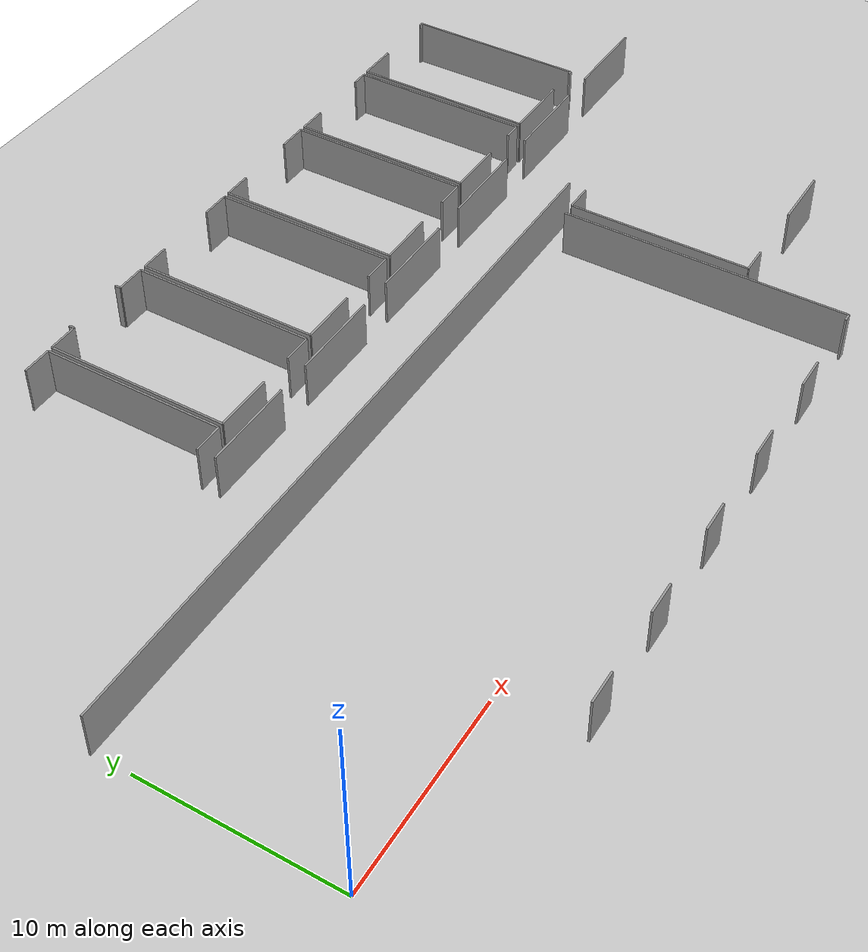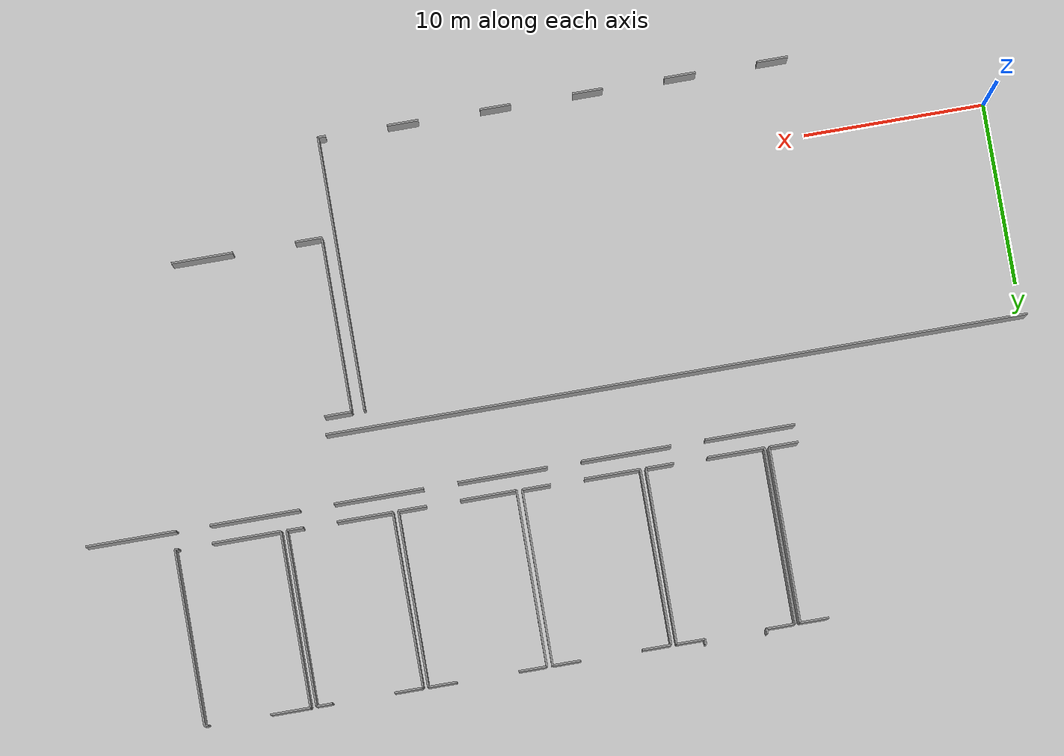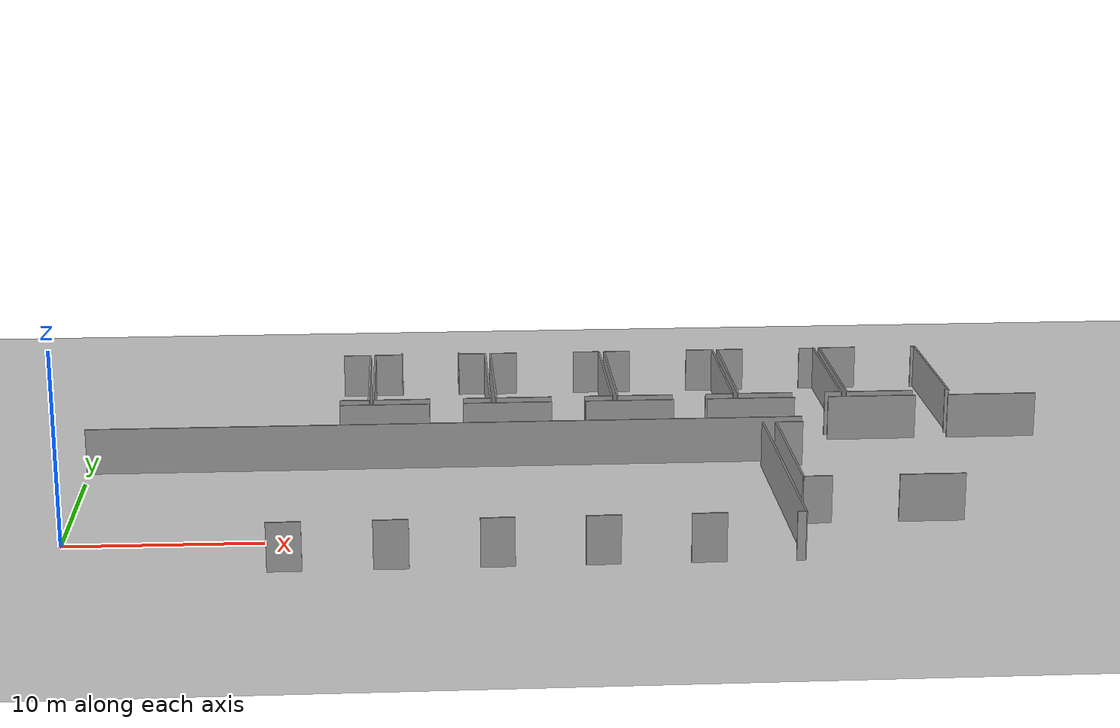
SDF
<sdf version="1.6">
 <world name="default">
  <model name="ground_plane">
   <static>1</static>
   <link name="link">
    <collision name="collision">
     <geometry><plane><normal>0 0 1</normal><size>100 100</size></plane></geometry>
     <surface><friction><ode><mu>100</mu><mu2>50</mu2></ode></friction></surface>
    </collision>
    <visual name="visual">
     <cast_shadows>0</cast_shadows>
     <geometry><plane><normal>0 0 1</normal><size>100 100</size></plane></geometry>
     <material>
      <script><uri>file://media/materials/scripts/gazebo.material</uri><name>Gazebo/Grey</name></script>
     </material>
    </visual>
   </link>
  </model>
  <model name="0510032192_A_40_1_103">
   <static>1</static>
   <link name="Wall_189">
    <collision name="Wall_189_Collision">
     <geometry><box><size>4.97541702133 0.1 2.5</size></box></geometry>
     <pose>2.48770851067 0 1.25 0 0 0</pose>
    </collision>
    <visual name="Wall_189_Visual">
     <pose>2.48770851067 0 1.25 0 0 0</pose>
     <geometry><box><size>4.97541702133 0.1 2.5</size></box></geometry>
     <material>
      <script><uri>file://media/materials/scripts/gazebo.material</uri><name>Gazebo/Grey</name></script>
      <ambient>1 1 1 1</ambient>
     </material>
    </visual>
    <pose>80.8799054794 -10.9934826522 0 0 0 0.0</pose>
   </link>
   <link name="Wall_190">
    <collision name="Wall_190_Collision">
     <geometry><box><size>4.95750384308 0.1 2.5</size></box></geometry>
     <pose>2.47875192154 0 1.25 0 0 0</pose>
    </collision>
    <visual name="Wall_190_Visual">
     <pose>2.47875192154 0 1.25 0 0 0</pose>
     <geometry><box><size>4.95750384308 0.1 2.5</size></box></geometry>
     <material>
      <script><uri>file://media/materials/scripts/gazebo.material</uri><name>Gazebo/Grey</name></script>
      <ambient>1 1 1 1</ambient>
     </material>
    </visual>
    <pose>87.7298540267 -10.9934826522 0 0 0 0.0</pose>
   </link>
   <link name="Wall_191">
    <collision name="Wall_191_Collision">
     <geometry><box><size>4.94797555677 0.1 2.5</size></box></geometry>
     <pose>2.47398777838 0 1.25 0 0 0</pose>
    </collision>
    <visual name="Wall_191_Visual">
     <pose>2.47398777838 0 1.25 0 0 0</pose>
     <geometry><box><size>4.94797555677 0.1 2.5</size></box></geometry>
     <material>
      <script><uri>file://media/materials/scripts/gazebo.material</uri><name>Gazebo/Grey</name></script>
      <ambient>1 1 1 1</ambient>
     </material>
    </visual>
    <pose>94.5466441376 -10.9934826522 0 0 0 0.0</pose>
   </link>
   <link name="Wall_192">
    <collision name="Wall_192_Collision">
     <geometry><box><size>4.92866489652 0.1 2.5</size></box></geometry>
     <pose>2.46433244826 0 1.25 0 0 0</pose>
    </collision>
    <visual name="Wall_192_Visual">
     <pose>2.46433244826 0 1.25 0 0 0</pose>
     <geometry><box><size>4.92866489652 0.1 2.5</size></box></geometry>
     <material>
      <script><uri>file://media/materials/scripts/gazebo.material</uri><name>Gazebo/Grey</name></script>
      <ambient>1 1 1 1</ambient>
     </material>
    </visual>
    <pose>101.373851842 -10.9934826522 0 0 0 0.0</pose>
   </link>
   <link name="Wall_193">
    <collision name="Wall_193_Collision">
     <geometry><box><size>4.95699566781 0.1 2.5</size></box></geometry>
     <pose>2.4784978339 0 1.25 0 0 0</pose>
    </collision>
    <visual name="Wall_193_Visual">
     <pose>2.4784978339 0 1.25 0 0 0</pose>
     <geometry><box><size>4.95699566781 0.1 2.5</size></box></geometry>
     <material>
      <script><uri>file://media/materials/scripts/gazebo.material</uri><name>Gazebo/Grey</name></script>
      <ambient>1 1 1 1</ambient>
     </material>
    </visual>
    <pose>108.195596661 -10.9934826522 0 0 0 0.0</pose>
   </link>
   <link name="Wall_194">
    <collision name="Wall_194_Collision">
     <geometry><box><size>4.98011764257 0.1 2.5</size></box></geometry>
     <pose>2.49005882129 0 1.25 0 0 0</pose>
    </collision>
    <visual name="Wall_194_Visual">
     <pose>2.49005882129 0 1.25 0 0 0</pose>
     <geometry><box><size>4.98011764257 0.1 2.5</size></box></geometry>
     <material>
      <script><uri>file://media/materials/scripts/gazebo.material</uri><name>Gazebo/Grey</name></script>
      <ambient>1 1 1 1</ambient>
     </material>
    </visual>
    <pose>114.993457243 -10.9934826522 0 0 0 0.0</pose>
   </link>
   <link name="Wall_202">
    <collision name="Wall_202_Collision">
     <geometry><box><size>38.7556058084 0.1 2.5</size></box></geometry>
     <pose>19.3778029042 0 1.25 0 0 0</pose>
    </collision>
    <visual name="Wall_202_Visual">
     <pose>19.3778029042 0 1.25 0 0 0</pose>
     <geometry><box><size>38.7556058084 0.1 2.5</size></box></geometry>
     <material>
      <script><uri>file://media/materials/scripts/gazebo.material</uri><name>Gazebo/Grey</name></script>
      <ambient>1 1 1 1</ambient>
     </material>
    </visual>
    <pose>106.125798788 -14.7831997256 0 0 0 3.14159265359</pose>
   </link>
   <link name="Wall_234">
    <collision name="Wall_234_Collision">
     <geometry><box><size>1.60189549376 0.1 2.5</size></box></geometry>
     <pose>0.800947746878 0 1.25 0 0 0</pose>
    </collision>
    <visual name="Wall_234_Visual">
     <pose>0.800947746878 0 1.25 0 0 0</pose>
     <geometry><box><size>1.60189549376 0.1 2.5</size></box></geometry>
     <material>
      <script><uri>file://media/materials/scripts/gazebo.material</uri><name>Gazebo/Grey</name></script>
      <ambient>1 1 1 1</ambient>
     </material>
    </visual>
    <pose>80.8810488738 -10.020199967 0 0 0 0.0</pose>
   </link>
   <link name="Wall_235">
    <collision name="Wall_235_Collision">
     <geometry><box><size>9.68874264734 0.1 2.5</size></box></geometry>
     <pose>4.84437132367 0 1.25 0 0 0</pose>
    </collision>
    <visual name="Wall_235_Visual">
     <pose>4.84437132367 0 1.25 0 0 0</pose>
     <geometry><box><size>9.68874264734 0.1 2.5</size></box></geometry>
     <material>
      <script><uri>file://media/materials/scripts/gazebo.material</uri><name>Gazebo/Grey</name></script>
      <ambient>1 1 1 1</ambient>
     </material>
    </visual>
    <pose>82.4829443675 -10.020199967 0 0 0 1.57079632679</pose>
   </link>
   <link name="Wall_236">
    <collision name="Wall_236_Collision">
     <geometry><box><size>1.58220370206 0.1 2.5</size></box></geometry>
     <pose>0.791101851028 0 1.25 0 0 0</pose>
    </collision>
    <visual name="Wall_236_Visual">
     <pose>0.791101851028 0 1.25 0 0 0</pose>
     <geometry><box><size>1.58220370206 0.1 2.5</size></box></geometry>
     <material>
      <script><uri>file://media/materials/scripts/gazebo.material</uri><name>Gazebo/Grey</name></script>
      <ambient>1 1 1 1</ambient>
     </material>
    </visual>
    <pose>82.4829443675 -0.33145731963 0 0 0 3.14159265359</pose>
   </link>
   <link name="Wall_239">
    <collision name="Wall_239_Collision">
     <geometry><box><size>9.70436903688 0.1 2.5</size></box></geometry>
     <pose>4.85218451844 0 1.25 0 0 0</pose>
    </collision>
    <visual name="Wall_239_Visual">
     <pose>4.85218451844 0 1.25 0 0 0</pose>
     <geometry><box><size>9.70436903688 0.1 2.5</size></box></geometry>
     <material>
      <script><uri>file://media/materials/scripts/gazebo.material</uri><name>Gazebo/Grey</name></script>
      <ambient>1 1 1 1</ambient>
     </material>
    </visual>
    <pose>82.7480848145 -10.0213433613 0 0 0 1.57079632679</pose>
   </link>
   <link name="Wall_240">
    <collision name="Wall_240_Collision">
     <geometry><box><size>1.58512570986 0.1 2.5</size></box></geometry>
     <pose>0.792562854929 0 1.25 0 0 0</pose>
    </collision>
    <visual name="Wall_240_Visual">
     <pose>0.792562854929 0 1.25 0 0 0</pose>
     <geometry><box><size>1.58512570986 0.1 2.5</size></box></geometry>
     <material>
      <script><uri>file://media/materials/scripts/gazebo.material</uri><name>Gazebo/Grey</name></script>
      <ambient>1 1 1 1</ambient>
     </material>
    </visual>
    <pose>82.7480848145 -0.316974324445 0 0 0 0.0</pose>
   </link>
   <link name="Wall_241">
    <collision name="Wall_241_Collision">
     <geometry><box><size>0.294995744032 0.1 2.5</size></box></geometry>
     <pose>0.147497872016 0 1.25 0 0 0</pose>
    </collision>
    <visual name="Wall_241_Visual">
     <pose>0.147497872016 0 1.25 0 0 0</pose>
     <geometry><box><size>0.294995744032 0.1 2.5</size></box></geometry>
     <material>
      <script><uri>file://media/materials/scripts/gazebo.material</uri><name>Gazebo/Grey</name></script>
      <ambient>1 1 1 1</ambient>
     </material>
    </visual>
    <pose>84.3332105243 -0.316974324445 0 0 0 1.57079632679</pose>
   </link>
   <link name="Wall_242">
    <collision name="Wall_242_Collision">
     <geometry><box><size>0.303761767434 0.1 2.5</size></box></geometry>
     <pose>0.151880883717 0 1.25 0 0 0</pose>
    </collision>
    <visual name="Wall_242_Visual">
     <pose>0.151880883717 0 1.25 0 0 0</pose>
     <geometry><box><size>0.303761767434 0.1 2.5</size></box></geometry>
     <material>
      <script><uri>file://media/materials/scripts/gazebo.material</uri><name>Gazebo/Grey</name></script>
      <ambient>1 1 1 1</ambient>
     </material>
    </visual>
    <pose>87.7232477481 -0.0219785804124 0 0 0 -1.57079632679</pose>
   </link>
   <link name="Wall_243">
    <collision name="Wall_243_Collision">
     <geometry><box><size>1.55984399019 0.1 2.5</size></box></geometry>
     <pose>0.779921995096 0 1.25 0 0 0</pose>
    </collision>
    <visual name="Wall_243_Visual">
     <pose>0.779921995096 0 1.25 0 0 0</pose>
     <geometry><box><size>1.55984399019 0.1 2.5</size></box></geometry>
     <material>
      <script><uri>file://media/materials/scripts/gazebo.material</uri><name>Gazebo/Grey</name></script>
      <ambient>1 1 1 1</ambient>
     </material>
    </visual>
    <pose>87.7232477481 -0.325740347846 0 0 0 0.0</pose>
   </link>
   <link name="Wall_244">
    <collision name="Wall_244_Collision">
     <geometry><box><size>9.69966841564 0.1 2.5</size></box></geometry>
     <pose>4.84983420782 0 1.25 0 0 0</pose>
    </collision>
    <visual name="Wall_244_Visual">
     <pose>4.84983420782 0 1.25 0 0 0</pose>
     <geometry><box><size>9.69966841564 0.1 2.5</size></box></geometry>
     <material>
      <script><uri>file://media/materials/scripts/gazebo.material</uri><name>Gazebo/Grey</name></script>
      <ambient>1 1 1 1</ambient>
     </material>
    </visual>
    <pose>89.2830917383 -0.325740347846 0 0 0 -1.57079632679</pose>
   </link>
   <link name="Wall_245">
    <collision name="Wall_245_Collision">
     <geometry><box><size>1.54345533775 0.1 2.5</size></box></geometry>
     <pose>0.771727668873 0 1.25 0 0 0</pose>
    </collision>
    <visual name="Wall_245_Visual">
     <pose>0.771727668873 0 1.25 0 0 0</pose>
     <geometry><box><size>1.54345533775 0.1 2.5</size></box></geometry>
     <material>
      <script><uri>file://media/materials/scripts/gazebo.material</uri><name>Gazebo/Grey</name></script>
      <ambient>1 1 1 1</ambient>
     </material>
    </visual>
    <pose>89.2830917383 -10.0254087635 0 0 0 3.14159265359</pose>
   </link>
   <link name="Wall_246">
    <collision name="Wall_246_Collision">
     <geometry><box><size>3.14039875406 0.1 2.5</size></box></geometry>
     <pose>1.57019937703 0 1.25 0 0 0</pose>
    </collision>
    <visual name="Wall_246_Visual">
     <pose>1.57019937703 0 1.25 0 0 0</pose>
     <geometry><box><size>3.14039875406 0.1 2.5</size></box></geometry>
     <material>
      <script><uri>file://media/materials/scripts/gazebo.material</uri><name>Gazebo/Grey</name></script>
      <ambient>1 1 1 1</ambient>
     </material>
    </visual>
    <pose>85.8884809371 -10.0254087635 0 0 0 3.14029810356</pose>
   </link>
   <link name="Wall_247">
    <collision name="Wall_247_Collision">
     <geometry><box><size>3.06963271632 0.1 2.5</size></box></geometry>
     <pose>1.53481635816 0 1.25 0 0 0</pose>
    </collision>
    <visual name="Wall_247_Visual">
     <pose>1.53481635816 0 1.25 0 0 0</pose>
     <geometry><box><size>3.06963271632 0.1 2.5</size></box></geometry>
     <material>
      <script><uri>file://media/materials/scripts/gazebo.material</uri><name>Gazebo/Grey</name></script>
      <ambient>1 1 1 1</ambient>
     </material>
    </visual>
    <pose>103.241268914 -10.0068603661 0 0 0 0.0</pose>
   </link>
   <link name="Wall_248">
    <collision name="Wall_248_Collision">
     <geometry><box><size>0.928436217651 0.1 2.5</size></box></geometry>
     <pose>0.464218108826 0 1.25 0 0 0</pose>
    </collision>
    <visual name="Wall_248_Visual">
     <pose>0.464218108826 0 1.25 0 0 0</pose>
     <geometry><box><size>0.928436217651 0.1 2.5</size></box></geometry>
     <material>
      <script><uri>file://media/materials/scripts/gazebo.material</uri><name>Gazebo/Grey</name></script>
      <ambient>1 1 1 1</ambient>
     </material>
    </visual>
    <pose>108.155704903 -10.0068603661 0 0 0 0.0</pose>
   </link>
   <link name="Wall_249">
    <collision name="Wall_249_Collision">
     <geometry><box><size>9.67540304651 0.1 2.5</size></box></geometry>
     <pose>4.83770152326 0 1.25 0 0 0</pose>
    </collision>
    <visual name="Wall_249_Visual">
     <pose>4.83770152326 0 1.25 0 0 0</pose>
     <geometry><box><size>9.67540304651 0.1 2.5</size></box></geometry>
     <material>
      <script><uri>file://media/materials/scripts/gazebo.material</uri><name>Gazebo/Grey</name></script>
      <ambient>1 1 1 1</ambient>
     </material>
    </visual>
    <pose>109.08414112 -10.0068603661 0 0 0 1.57079632679</pose>
   </link>
   <link name="Wall_250">
    <collision name="Wall_250_Collision">
     <geometry><box><size>0.890577160063 0.1 2.5</size></box></geometry>
     <pose>0.445288580031 0 1.25 0 0 0</pose>
    </collision>
    <visual name="Wall_250_Visual">
     <pose>0.445288580031 0 1.25 0 0 0</pose>
     <geometry><box><size>0.890577160063 0.1 2.5</size></box></geometry>
     <material>
      <script><uri>file://media/materials/scripts/gazebo.material</uri><name>Gazebo/Grey</name></script>
      <ambient>1 1 1 1</ambient>
     </material>
    </visual>
    <pose>109.08414112 -0.33145731963 0 0 0 3.14159265359</pose>
   </link>
   <link name="Wall_251">
    <collision name="Wall_251_Collision">
     <geometry><box><size>1.56022512164 0.1 2.5</size></box></geometry>
     <pose>0.780112560822 0 1.25 0 0 0</pose>
    </collision>
    <visual name="Wall_251_Visual">
     <pose>0.780112560822 0 1.25 0 0 0</pose>
     <geometry><box><size>1.56022512164 0.1 2.5</size></box></geometry>
     <material>
      <script><uri>file://media/materials/scripts/gazebo.material</uri><name>Gazebo/Grey</name></script>
      <ambient>1 1 1 1</ambient>
     </material>
    </visual>
    <pose>104.782818594 -0.33145731963 0 0 0 3.14159265359</pose>
   </link>
   <link name="Wall_252">
    <collision name="Wall_252_Collision">
     <geometry><box><size>9.67542107014 0.1 2.5</size></box></geometry>
     <pose>4.83771053507 0 1.25 0 0 0</pose>
    </collision>
    <visual name="Wall_252_Visual">
     <pose>4.83771053507 0 1.25 0 0 0</pose>
     <geometry><box><size>9.67542107014 0.1 2.5</size></box></geometry>
     <material>
      <script><uri>file://media/materials/scripts/gazebo.material</uri><name>Gazebo/Grey</name></script>
      <ambient>1 1 1 1</ambient>
     </material>
    </visual>
    <pose>103.222593472 -0.33145731963 0 0 0 -1.56886613145</pose>
   </link>
   <link name="Wall_253">
    <collision name="Wall_253_Collision">
     <geometry><box><size>9.70131998526 0.1 2.5</size></box></geometry>
     <pose>4.85065999263 0 1.25 0 0 0</pose>
    </collision>
    <visual name="Wall_253_Visual">
     <pose>4.85065999263 0 1.25 0 0 0</pose>
     <geometry><box><size>9.70131998526 0.1 2.5</size></box></geometry>
     <material>
      <script><uri>file://media/materials/scripts/gazebo.material</uri><name>Gazebo/Grey</name></script>
      <ambient>1 1 1 1</ambient>
     </material>
    </visual>
    <pose>96.4188888748 -10.0289659904 0 0 0 1.57079632679</pose>
   </link>
   <link name="Wall_254">
    <collision name="Wall_254_Collision">
     <geometry><box><size>1.54345533775 0.1 2.5</size></box></geometry>
     <pose>0.771727668873 0 1.25 0 0 0</pose>
    </collision>
    <visual name="Wall_254_Visual">
     <pose>0.771727668873 0 1.25 0 0 0</pose>
     <geometry><box><size>1.54345533775 0.1 2.5</size></box></geometry>
     <material>
      <script><uri>file://media/materials/scripts/gazebo.material</uri><name>Gazebo/Grey</name></script>
      <ambient>1 1 1 1</ambient>
     </material>
    </visual>
    <pose>96.4188888748 -0.327646005107 0 0 0 0.0</pose>
   </link>
   <link name="Wall_255">
    <collision name="Wall_255_Collision">
     <geometry><box><size>1.58093326388 0.1 2.5</size></box></geometry>
     <pose>0.790466631941 0 1.25 0 0 0</pose>
    </collision>
    <visual name="Wall_255_Visual">
     <pose>0.790466631941 0 1.25 0 0 0</pose>
     <geometry><box><size>1.58093326388 0.1 2.5</size></box></geometry>
     <material>
      <script><uri>file://media/materials/scripts/gazebo.material</uri><name>Gazebo/Grey</name></script>
      <ambient>1 1 1 1</ambient>
     </material>
    </visual>
    <pose>101.353270743 -0.327646005107 0 0 0 0.0</pose>
   </link>
   <link name="Wall_256">
    <collision name="Wall_256_Collision">
     <geometry><box><size>9.69306213713 0.1 2.5</size></box></geometry>
     <pose>4.84653106857 0 1.25 0 0 0</pose>
    </collision>
    <visual name="Wall_256_Visual">
     <pose>4.84653106857 0 1.25 0 0 0</pose>
     <geometry><box><size>9.69306213713 0.1 2.5</size></box></geometry>
     <material>
      <script><uri>file://media/materials/scripts/gazebo.material</uri><name>Gazebo/Grey</name></script>
      <ambient>1 1 1 1</ambient>
     </material>
    </visual>
    <pose>102.934204007 -0.327646005107 0 0 0 -1.57079632679</pose>
   </link>
   <link name="Wall_257">
    <collision name="Wall_257_Collision">
     <geometry><box><size>1.55590563185 0.1 2.5</size></box></geometry>
     <pose>0.777952815926 0 1.25 0 0 0</pose>
    </collision>
    <visual name="Wall_257_Visual">
     <pose>0.777952815926 0 1.25 0 0 0</pose>
     <geometry><box><size>1.55590563185 0.1 2.5</size></box></geometry>
     <material>
      <script><uri>file://media/materials/scripts/gazebo.material</uri><name>Gazebo/Grey</name></script>
      <ambient>1 1 1 1</ambient>
     </material>
    </visual>
    <pose>102.934204007 -10.0207081422 0 0 0 3.14159265359</pose>
   </link>
   <link name="Wall_258">
    <collision name="Wall_258_Collision">
     <geometry><box><size>3.1078838762 0.1 2.5</size></box></geometry>
     <pose>1.5539419381 0 1.25 0 0 0</pose>
    </collision>
    <visual name="Wall_258_Visual">
     <pose>1.5539419381 0 1.25 0 0 0</pose>
     <geometry><box><size>3.1078838762 0.1 2.5</size></box></geometry>
     <material>
      <script><uri>file://media/materials/scripts/gazebo.material</uri><name>Gazebo/Grey</name></script>
      <ambient>1 1 1 1</ambient>
     </material>
    </visual>
    <pose>99.5267617801 -10.0207081422 0 0 0 -3.13893558589</pose>
   </link>
   <link name="Wall_259">
    <collision name="Wall_259_Collision">
     <geometry><box><size>3.08995972711 0.1 2.5</size></box></geometry>
     <pose>1.54497986355 0 1.25 0 0 0</pose>
    </collision>
    <visual name="Wall_259_Visual">
     <pose>1.54497986355 0 1.25 0 0 0</pose>
     <geometry><box><size>3.08995972711 0.1 2.5</size></box></geometry>
     <material>
      <script><uri>file://media/materials/scripts/gazebo.material</uri><name>Gazebo/Grey</name></script>
      <ambient>1 1 1 1</ambient>
     </material>
    </visual>
    <pose>89.5973981426 -10.020199967 0 0 0 0.0</pose>
   </link>
   <link name="Wall_260">
    <collision name="Wall_260_Collision">
     <geometry><box><size>1.56708548778 0.1 2.5</size></box></geometry>
     <pose>0.783542743892 0 1.25 0 0 0</pose>
    </collision>
    <visual name="Wall_260_Visual">
     <pose>0.783542743892 0 1.25 0 0 0</pose>
     <geometry><box><size>1.56708548778 0.1 2.5</size></box></geometry>
     <material>
      <script><uri>file://media/materials/scripts/gazebo.material</uri><name>Gazebo/Grey</name></script>
      <ambient>1 1 1 1</ambient>
     </material>
    </visual>
    <pose>94.5376240265 -10.020199967 0 0 0 0.0</pose>
   </link>
   <link name="Wall_261">
    <collision name="Wall_261_Collision">
     <geometry><box><size>9.6877262968 0.1 2.5</size></box></geometry>
     <pose>4.8438631484 0 1.25 0 0 0</pose>
    </collision>
    <visual name="Wall_261_Visual">
     <pose>4.8438631484 0 1.25 0 0 0</pose>
     <geometry><box><size>9.6877262968 0.1 2.5</size></box></geometry>
     <material>
      <script><uri>file://media/materials/scripts/gazebo.material</uri><name>Gazebo/Grey</name></script>
      <ambient>1 1 1 1</ambient>
     </material>
    </visual>
    <pose>96.1047095143 -10.020199967 0 0 0 1.57079632679</pose>
   </link>
   <link name="Wall_262">
    <collision name="Wall_262_Collision">
     <geometry><box><size>1.55730311384 0.1 2.5</size></box></geometry>
     <pose>0.778651556922 0 1.25 0 0 0</pose>
    </collision>
    <visual name="Wall_262_Visual">
     <pose>0.778651556922 0 1.25 0 0 0</pose>
     <geometry><box><size>1.55730311384 0.1 2.5</size></box></geometry>
     <material>
      <script><uri>file://media/materials/scripts/gazebo.material</uri><name>Gazebo/Grey</name></script>
      <ambient>1 1 1 1</ambient>
     </material>
    </visual>
    <pose>96.1047095143 -0.332473670169 0 0 0 3.14159265359</pose>
   </link>
   <link name="Wall_263">
    <collision name="Wall_263_Collision">
     <geometry><box><size>1.57610559882 0.1 2.5</size></box></geometry>
     <pose>0.788052799411 0 1.25 0 0 0</pose>
    </collision>
    <visual name="Wall_263_Visual">
     <pose>0.788052799411 0 1.25 0 0 0</pose>
     <geometry><box><size>1.57610559882 0.1 2.5</size></box></geometry>
     <material>
      <script><uri>file://media/materials/scripts/gazebo.material</uri><name>Gazebo/Grey</name></script>
      <ambient>1 1 1 1</ambient>
     </material>
    </visual>
    <pose>91.1611804912 -0.332473670169 0 0 0 3.14159265359</pose>
   </link>
   <link name="Wall_264">
    <collision name="Wall_264_Collision">
     <geometry><box><size>9.68773413468 0.1 2.5</size></box></geometry>
     <pose>4.84386706734 0 1.25 0 0 0</pose>
    </collision>
    <visual name="Wall_264_Visual">
     <pose>4.84386706734 0 1.25 0 0 0</pose>
     <geometry><box><size>9.68773413468 0.1 2.5</size></box></geometry>
     <material>
      <script><uri>file://media/materials/scripts/gazebo.material</uri><name>Gazebo/Grey</name></script>
      <ambient>1 1 1 1</ambient>
     </material>
    </visual>
    <pose>89.5850748923 -0.332473670169 0 0 0 -1.56952427975</pose>
   </link>
   <link name="Wall_265">
    <collision name="Wall_265_Collision">
     <geometry><box><size>9.71415141082 0.1 2.5</size></box></geometry>
     <pose>4.85707570541 0 1.25 0 0 0</pose>
    </collision>
    <visual name="Wall_265_Visual">
     <pose>4.85707570541 0 1.25 0 0 0</pose>
     <geometry><box><size>9.71415141082 0.1 2.5</size></box></geometry>
     <material>
      <script><uri>file://media/materials/scripts/gazebo.material</uri><name>Gazebo/Grey</name></script>
      <ambient>1 1 1 1</ambient>
     </material>
    </visual>
    <pose>109.406705373 -10.0214704051 0 0 0 1.57079632679</pose>
   </link>
   <link name="Wall_266">
    <collision name="Wall_266_Collision">
     <geometry><box><size>2.18960019311 0.1 2.5</size></box></geometry>
     <pose>1.09480009655 0 1.25 0 0 0</pose>
    </collision>
    <visual name="Wall_266_Visual">
     <pose>1.09480009655 0 1.25 0 0 0</pose>
     <geometry><box><size>2.18960019311 0.1 2.5</size></box></geometry>
     <material>
      <script><uri>file://media/materials/scripts/gazebo.material</uri><name>Gazebo/Grey</name></script>
      <ambient>1 1 1 1</ambient>
     </material>
    </visual>
    <pose>109.406705373 -0.307318994321 0 0 0 0.0</pose>
   </link>
   <link name="Wall_267">
    <collision name="Wall_267_Collision">
     <geometry><box><size>0.219785804124 0.1 2.5</size></box></geometry>
     <pose>0.109892902062 0 1.25 0 0 0</pose>
    </collision>
    <visual name="Wall_267_Visual">
     <pose>0.109892902062 0 1.25 0 0 0</pose>
     <geometry><box><size>0.219785804124 0.1 2.5</size></box></geometry>
     <material>
      <script><uri>file://media/materials/scripts/gazebo.material</uri><name>Gazebo/Grey</name></script>
      <ambient>1 1 1 1</ambient>
     </material>
    </visual>
    <pose>115.007432063 -0.307318994321 0 0 0 0.0</pose>
   </link>
   <link name="Wall_268">
    <collision name="Wall_268_Collision">
     <geometry><box><size>9.70131998526 0.1 2.5</size></box></geometry>
     <pose>4.85065999263 0 1.25 0 0 0</pose>
    </collision>
    <visual name="Wall_268_Visual">
     <pose>4.85065999263 0 1.25 0 0 0</pose>
     <geometry><box><size>9.70131998526 0.1 2.5</size></box></geometry>
     <material>
      <script><uri>file://media/materials/scripts/gazebo.material</uri><name>Gazebo/Grey</name></script>
      <ambient>1 1 1 1</ambient>
     </material>
    </visual>
    <pose>115.227217867 -0.307318994321 0 0 0 -1.57079632679</pose>
   </link>
   <link name="Wall_269">
    <collision name="Wall_269_Collision">
     <geometry><box><size>0.204540546034 0.1 2.5</size></box></geometry>
     <pose>0.102270273017 0 1.25 0 0 0</pose>
    </collision>
    <visual name="Wall_269_Visual">
     <pose>0.102270273017 0 1.25 0 0 0</pose>
     <geometry><box><size>0.204540546034 0.1 2.5</size></box></geometry>
     <material>
      <script><uri>file://media/materials/scripts/gazebo.material</uri><name>Gazebo/Grey</name></script>
      <ambient>1 1 1 1</ambient>
     </material>
    </visual>
    <pose>115.227217867 -10.0086389796 0 0 0 3.14159265359</pose>
   </link>
   <link name="Wall_270">
    <collision name="Wall_270_Collision">
     <geometry><box><size>3.78529228793 0.1 2.5</size></box></geometry>
     <pose>1.89264614396 0 1.25 0 0 0</pose>
    </collision>
    <visual name="Wall_270_Visual">
     <pose>1.89264614396 0 1.25 0 0 0</pose>
     <geometry><box><size>3.78529228793 0.1 2.5</size></box></geometry>
     <material>
      <script><uri>file://media/materials/scripts/gazebo.material</uri><name>Gazebo/Grey</name></script>
      <ambient>1 1 1 1</ambient>
     </material>
    </visual>
    <pose>113.191975912 -10.0086389796 0 0 0 -3.13820283607</pose>
   </link>
   <link name="Wall_311">
    <collision name="Wall_311_Collision">
     <geometry><box><size>1.47586802688 0.1 2.5</size></box></geometry>
     <pose>0.737934013441 0 1.25 0 0 0</pose>
    </collision>
    <visual name="Wall_311_Visual">
     <pose>0.737934013441 0 1.25 0 0 0</pose>
     <geometry><box><size>1.47586802688 0.1 2.5</size></box></geometry>
     <material>
      <script><uri>file://media/materials/scripts/gazebo.material</uri><name>Gazebo/Grey</name></script>
      <ambient>1 1 1 1</ambient>
     </material>
    </visual>
    <pose>104.53775107 -25.4306150191 0 0 0 0.0</pose>
   </link>
   <link name="Wall_312">
    <collision name="Wall_312_Collision">
     <geometry><box><size>3.3831768577 0.1 2.5</size></box></geometry>
     <pose>1.69158842885 0 1.25 0 0 0</pose>
    </collision>
    <visual name="Wall_312_Visual">
     <pose>1.69158842885 0 1.25 0 0 0</pose>
     <geometry><box><size>3.3831768577 0.1 2.5</size></box></geometry>
     <material>
      <script><uri>file://media/materials/scripts/gazebo.material</uri><name>Gazebo/Grey</name></script>
      <ambient>1 1 1 1</ambient>
     </material>
    </visual>
    <pose>109.451805928 -25.4306150191 0 0 0 0.0</pose>
   </link>
   <link name="Wall_316">
    <collision name="Wall_316_Collision">
     <geometry><box><size>1.48793718954 0.1 2.5</size></box></geometry>
     <pose>0.743968594768 0 1.25 0 0 0</pose>
    </collision>
    <visual name="Wall_316_Visual">
     <pose>0.743968594768 0 1.25 0 0 0</pose>
     <geometry><box><size>1.48793718954 0.1 2.5</size></box></geometry>
     <material>
      <script><uri>file://media/materials/scripts/gazebo.material</uri><name>Gazebo/Grey</name></script>
      <ambient>1 1 1 1</ambient>
     </material>
    </visual>
    <pose>106.024163734 -15.7660106971 0 0 0 3.14159265359</pose>
   </link>
   <link name="Wall_317">
    <collision name="Wall_317_Collision">
     <geometry><box><size>9.66460444227 0.1 2.5</size></box></geometry>
     <pose>4.83230222114 0 1.25 0 0 0</pose>
    </collision>
    <visual name="Wall_317_Visual">
     <pose>4.83230222114 0 1.25 0 0 0</pose>
     <geometry><box><size>9.66460444227 0.1 2.5</size></box></geometry>
     <material>
      <script><uri>file://media/materials/scripts/gazebo.material</uri><name>Gazebo/Grey</name></script>
      <ambient>1 1 1 1</ambient>
     </material>
    </visual>
    <pose>104.536226545 -15.7660106971 0 0 0 -1.57063858358</pose>
   </link>
   <link name="Wall_328">
    <collision name="Wall_328_Collision">
     <geometry><box><size>15.1149111328 0.1 2.5</size></box></geometry>
     <pose>7.55745556642 0 1.25 0 0 0</pose>
    </collision>
    <visual name="Wall_328_Visual">
     <pose>7.55745556642 0 1.25 0 0 0</pose>
     <geometry><box><size>15.1149111328 0.1 2.5</size></box></geometry>
     <material>
      <script><uri>file://media/materials/scripts/gazebo.material</uri><name>Gazebo/Grey</name></script>
      <ambient>1 1 1 1</ambient>
     </material>
    </visual>
    <pose>103.821605072 -15.7623264264 0 0 0 -1.57079632679</pose>
   </link>
   <link name="Wall_329">
    <collision name="Wall_329_Collision">
     <geometry><box><size>0.425977919785 0.1 2.5</size></box></geometry>
     <pose>0.212988959892 0 1.25 0 0 0</pose>
    </collision>
    <visual name="Wall_329_Visual">
     <pose>0.212988959892 0 1.25 0 0 0</pose>
     <geometry><box><size>0.425977919785 0.1 2.5</size></box></geometry>
     <material>
      <script><uri>file://media/materials/scripts/gazebo.material</uri><name>Gazebo/Grey</name></script>
      <ambient>1 1 1 1</ambient>
     </material>
    </visual>
    <pose>103.821605072 -30.8772375592 0 0 0 3.14159265359</pose>
   </link>
   <link name="Wall_330">
    <collision name="Wall_330_Collision">
     <geometry><box><size>1.7291933988 0.1 2.5</size></box></geometry>
     <pose>0.864596699402 0 1.25 0 0 0</pose>
    </collision>
    <visual name="Wall_330_Visual">
     <pose>0.864596699402 0 1.25 0 0 0</pose>
     <geometry><box><size>1.7291933988 0.1 2.5</size></box></geometry>
     <material>
      <script><uri>file://media/materials/scripts/gazebo.material</uri><name>Gazebo/Grey</name></script>
      <ambient>1 1 1 1</ambient>
     </material>
    </visual>
    <pose>99.995807554 -30.8772375592 0 0 0 3.14159265359</pose>
   </link>
   <link name="Wall_331">
    <collision name="Wall_331_Collision">
     <geometry><box><size>1.70403872296 0.1 2.5</size></box></geometry>
     <pose>0.852019361478 0 1.25 0 0 0</pose>
    </collision>
    <visual name="Wall_331_Visual">
     <pose>0.852019361478 0 1.25 0 0 0</pose>
     <geometry><box><size>1.70403872296 0.1 2.5</size></box></geometry>
     <material>
      <script><uri>file://media/materials/scripts/gazebo.material</uri><name>Gazebo/Grey</name></script>
      <ambient>1 1 1 1</ambient>
     </material>
    </visual>
    <pose>94.8584096655 -30.8772375592 0 0 0 3.14159265359</pose>
   </link>
   <link name="Wall_332">
    <collision name="Wall_332_Collision">
     <geometry><box><size>1.67901109093 0.1 2.5</size></box></geometry>
     <pose>0.839505545463 0 1.25 0 0 0</pose>
    </collision>
    <visual name="Wall_332_Visual">
     <pose>0.839505545463 0 1.25 0 0 0</pose>
     <geometry><box><size>1.67901109093 0.1 2.5</size></box></geometry>
     <material>
      <script><uri>file://media/materials/scripts/gazebo.material</uri><name>Gazebo/Grey</name></script>
      <ambient>1 1 1 1</ambient>
     </material>
    </visual>
    <pose>89.7379086047 -30.8772375592 0 0 0 3.14159265359</pose>
   </link>
   <link name="Wall_333">
    <collision name="Wall_333_Collision">
     <geometry><box><size>1.72068146304 0.1 2.5</size></box></geometry>
     <pose>0.860340731518 0 1.25 0 0 0</pose>
    </collision>
    <visual name="Wall_333_Visual">
     <pose>0.860340731518 0 1.25 0 0 0</pose>
     <geometry><box><size>1.72068146304 0.1 2.5</size></box></geometry>
     <material>
      <script><uri>file://media/materials/scripts/gazebo.material</uri><name>Gazebo/Grey</name></script>
      <ambient>1 1 1 1</ambient>
     </material>
    </visual>
    <pose>84.6339232401 -30.8772375592 0 0 0 3.14159265359</pose>
   </link>
   <link name="Wall_334">
    <collision name="Wall_334_Collision">
     <geometry><box><size>1.69882992644 0.1 2.5</size></box></geometry>
     <pose>0.849414963221 0 1.25 0 0 0</pose>
    </collision>
    <visual name="Wall_334_Visual">
     <pose>0.849414963221 0 1.25 0 0 0</pose>
     <geometry><box><size>1.69882992644 0.1 2.5</size></box></geometry>
     <material>
      <script><uri>file://media/materials/scripts/gazebo.material</uri><name>Gazebo/Grey</name></script>
      <ambient>1 1 1 1</ambient>
     </material>
    </visual>
    <pose>79.5050372874 -30.8772375592 0 0 0 3.14159265359</pose>
   </link>
   <pose>-67.5 26.6902360474 0 0 0 0</pose>
  </model>
 </world>
</sdf>
